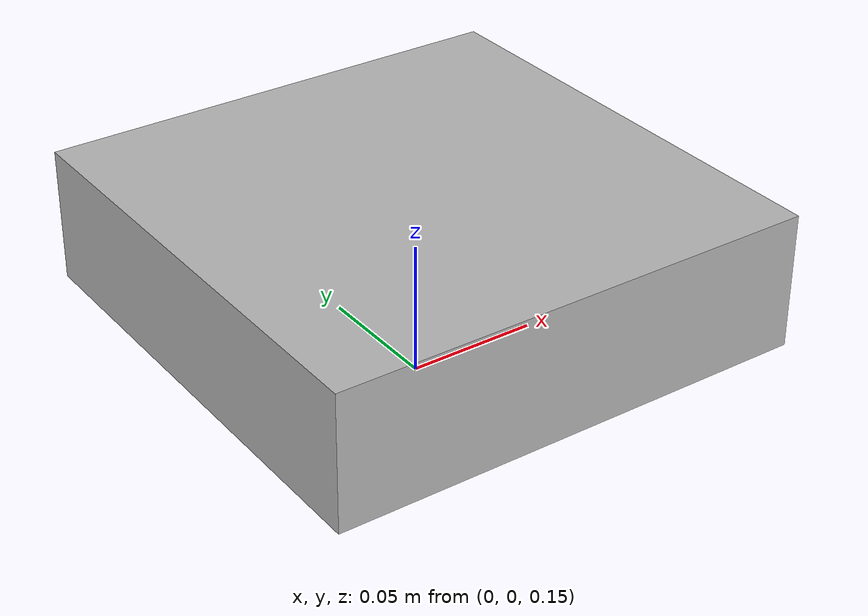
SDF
<?xml version="1.0" ?>
<sdf version="1.9">
  <model name="simple_drone">
    <static>false</static>

    <link name="base_link">
      <pose>0 0 0.2 0 0 0</pose>

      <inertial>
        <mass>0.08</mass>
        <inertia>
          <ixx>0.001</ixx>
          <iyy>0.001</iyy>
          <izz>0.001</izz>
          <ixy>0.0</ixy>
          <ixz>0.0</ixz>
          <iyz>0.0</iyz>
        </inertia>
      </inertial>

      <collision name="collision">
        <geometry>
          <box>
            <size>0.18 0.18 0.05</size>
          </box>
        </geometry>
      </collision>

      <visual name="visual">
        <geometry>
          <box>
            <size>0.18 0.18 0.05</size>
          </box>
        </geometry>
      </visual>

      <sensor name="front_camera" type="camera">
        <pose>0.09 0 0 0 0 0</pose>
        <update_rate>30</update_rate>
        <camera>
          <horizontal_fov>1.3962634</horizontal_fov>
          <image>
            <width>640</width>
            <height>480</height>
            <format>R8G8B8</format>
          </image>
          <clip>
            <near>0.1</near>
            <far>100</far>
          </clip>
        </camera>
        <always_on>1</always_on>
        <visualize>true</visualize>
        <topic>/drone_camera</topic>
      </sensor>
    </link>

    <plugin
      filename="gz-sim-pose-publisher-system"
      name="gz::sim::systems::PosePublisher">
      <publish_link_pose>true</publish_link_pose>
      <publish_model_pose>true</publish_model_pose>
      <use_pose_vector_msg>true</use_pose_vector_msg>
      <static_publisher>false</static_publisher>
      <static_update_frequency>1</static_update_frequency>
    </plugin>
  </model>
</sdf>
